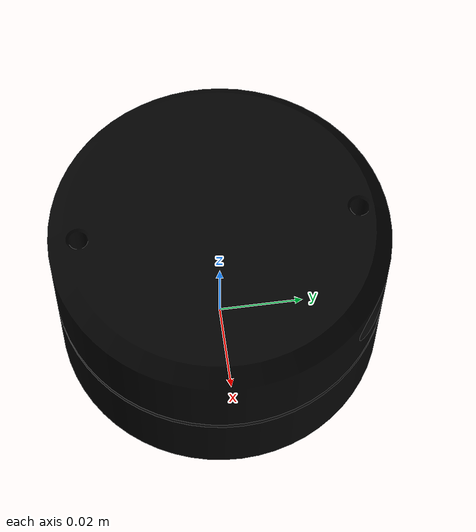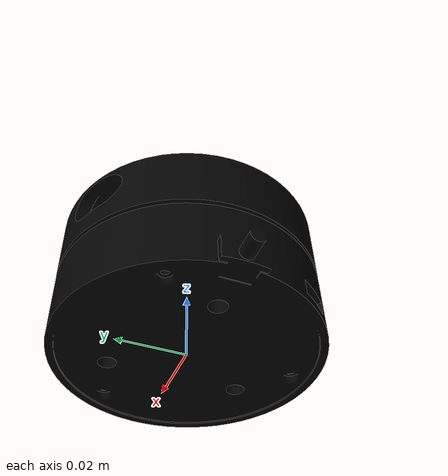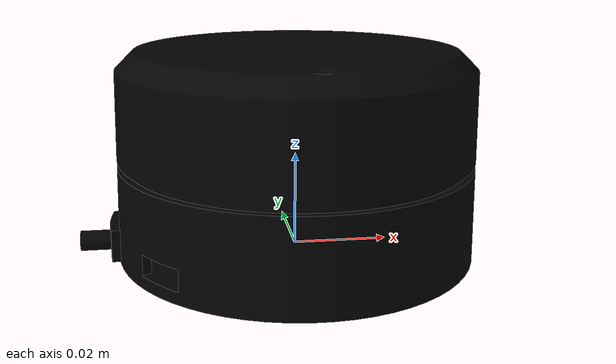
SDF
<?xml version='1.0'?>
<sdf version='1.6'>
  <model name='ydlidar'>
    <link name='base_laser'>
      <pose frame=''>0 0 0 0 -0 0</pose>
      <inertial>
        <pose frame=''>-0.00034 0.00294 0.019502 0 -0 0</pose>
        <mass>0.41199</mass>
        <inertia>
          <ixx>0.000255961</ixx>
          <ixy>9.63707e-10</ixy>
          <ixz>-5.69487e-07</ixz>
          <iyy>0.000409873</iyy>
          <iyz>1.84953e-05</iyz>
          <izz>0.000186531</izz>
        </inertia>
      </inertial>
      <collision name='base_laser_collision'>
        <pose frame=''>0 0 0 0 -0 0</pose>
        <geometry>
          <mesh>
            <scale>1 1 1</scale>
            <uri>model://ydlidar/meshes/ydlidar.dae</uri>
          </mesh>
        </geometry>
      </collision>
      <visual name='base_laser_visual'>
        <pose frame=''>0 0 0 0 -0 0</pose>
        <geometry>
          <mesh>
            <scale>1 1 1</scale>
            <uri>model://ydlidar/meshes/ydlidar.dae</uri>
          </mesh>
        </geometry>
      </visual>
    </link>
  </model>
</sdf>
